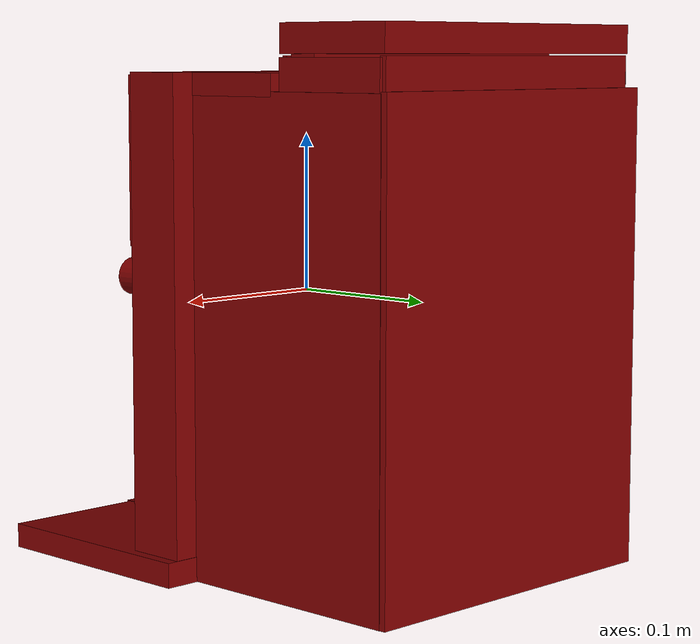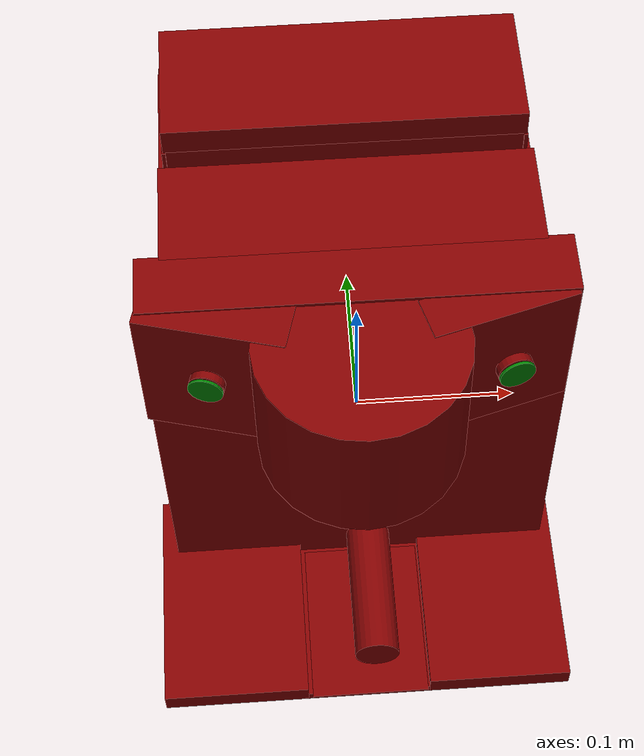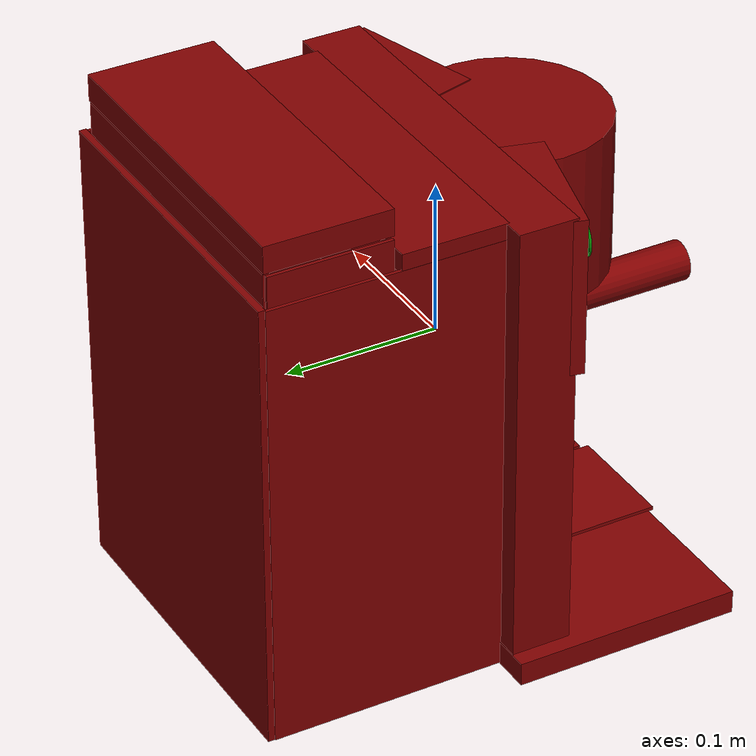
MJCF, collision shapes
<?xml version='1.0' encoding='UTF-8'?>
<mujoco model="model">
  <compiler angle="radian"/>
  <asset>
    <mesh file="visuals/Body001.obj" name="Body001_vis"/>
    <mesh file="visuals/Button001.obj" name="Button001_vis"/>
    <mesh file="visuals/Button002.obj" name="Button002_vis"/>
    <mesh file="visuals/Container001.obj" name="Container001_vis"/>
    <mesh file="visuals/Lever001.obj" name="Lever001_vis"/>
    <mesh file="visuals/Lid001.obj" name="Lid001_vis"/>
    <mesh file="visuals/Lid002.obj" name="Lid002_vis"/>
    <texture file="visuals/T_BC001.png" name="Body001_material" type="2d"/>
    <material name="Body001_material" rgba="1 1 1 1.0" texture="Body001_material" shininess="0.141421377658844" specular="0.3103448502657381"/>
    <texture file="visuals/T_BC001.png" name="Button001_material" type="2d"/>
    <material name="Button001_material" rgba="1 1 1 1.0" texture="Button001_material" shininess="0.141421377658844" specular="0.3103448502657381"/>
    <texture file="visuals/T_BC001.png" name="Button002_material" type="2d"/>
    <material name="Button002_material" rgba="1 1 1 1.0" texture="Button002_material" shininess="0.141421377658844" specular="0.3103448502657381"/>
    <texture file="visuals/T_BC001.png" name="Container001_material" type="2d"/>
    <material name="Container001_material" rgba="1 1 1 0.10236221551895142" texture="Container001_material" shininess="0.5" specular="0.3103448502657381"/>
    <texture file="visuals/T_BC001.png" name="Lid002_material" type="2d"/>
    <material name="Lid002_material" rgba="1 1 1 1.0" texture="Lid002_material" shininess="0.141421377658844" specular="0.3103448502657381"/>
    <texture file="visuals/T_BC001.png" name="Lever001_material" type="2d"/>
    <material name="Lever001_material" rgba="1 1 1 1.0" texture="Lever001_material" shininess="0.141421377658844" specular="0.3103448502657381"/>
    <texture file="visuals/T_BC001.png" name="Lid001_material" type="2d"/>
    <material name="Lid001_material" rgba="1 1 1 1.0" texture="Lid001_material" shininess="0.141421377658844" specular="0.3103448502657381"/>
  </asset>
  <default>
    <default class="visual">
      <geom conaffinity="0" contype="0" group="1" type="mesh"/>
    </default>
    <default class="collision">
      <geom group="0" rgba="0.5 0 0 0.5"/>
    </default>
    <default class="spawn">
      <geom group="0" rgba="1 1 1 0.5" contype="0" conaffinity="0"/>
      <site group="0" rgba="1 1 1 0.5"/>
    </default>
    <default class="region">
      <geom group="1" conaffinity="0" contype="0" rgba="0 1 0 0"/>
    </default>
  </default>
  <worldbody>
    <body>
      <body name="object">
        <geom class="collision" type="cylinder" pos="0.090449 -0.048671 0.097544" size="0.011137444525957108 0.0008226927020587027" quat="0.7017298340797424 0.7017298340797424 0.08703598380088806 0.08703596144914627" name="start_button_2" rgba="0.0 0.5 0 0.5"/>
        <geom class="collision" type="cylinder" pos="-0.090480 -0.047437 0.097704" size="0.010598023422062397 0.0007483839290216565" quat="0.7017298340797424 0.7017298340797424 -0.08703597635030746 -0.08703596144914627" name="start_button_1" rgba="0.0 0.5 0 0.5"/>
        <site type="cylinder" rgba="0.8 0.5 0.25 1" size="0.0018364122370257974 0.06123407557606697" pos="0.000350 -0.047698 -0.095516" name="coffee_liquid"/>
        <site rgba="0 0 0 0" size="0.009999999776482582 0.009999999776482582" pos="0.000403 -0.047850 -0.142950" name="receptacle_place_site"/>
        <geom mesh="Body001_vis" type="mesh" solimp="0.998 0.998 0.001" solref="0.001 1" density="100" friction="0.95 0.3 0.1" class="visual" material="Body001_material"/>
        <geom class="collision" type="box" pos="-0.000032 0.173026 -0.018967" size="0.11273114383220673 0.0022655546199530363 0.14878633618354797" quat="1.0 0.0 0.0 0.0"/>
        <geom class="collision" type="box" pos="0.111902 0.094330 -0.019421" size="0.0011445436393842101 0.07677944749593735 0.1483321487903595" quat="1.0 0.0 0.0 0.0"/>
        <geom class="collision" type="box" pos="-0.112162 0.094330 -0.019421" size="0.0011445436393842101 0.07677944749593735 0.1483321487903595" quat="1.0 0.0 0.0 0.0"/>
        <geom class="collision" type="box" pos="0.000450 -0.000590 -0.014114" size="0.12807708978652954 0.019435109570622444 0.15363937616348267" quat="1.0 0.0 0.0 0.0"/>
        <geom class="collision" type="box" pos="0.000093 0.051148 0.132698" size="0.11322750896215439 0.0343429334461689 0.006827814970165491" quat="1.0 0.0 0.0 0.0"/>
        <geom class="collision" type="box" pos="-0.090140 -0.055218 -0.160338" size="0.04828904569149017 0.07455458492040634 0.007659596856683493" quat="1.0 0.0 0.0 0.0"/>
        <geom class="collision" type="box" pos="0.088155 -0.055218 -0.160338" size="0.047481801360845566 0.07455458492040634 0.007659596856683493" quat="1.0 0.0 0.0 0.0"/>
        <geom class="collision" type="box" pos="0.002571 -0.055218 -0.164359" size="0.047481801360845566 0.07455458492040634 0.003638563212007284" quat="1.0 0.0 0.0 0.0"/>
        <geom class="collision" type="cylinder" pos="-0.000128 -0.048285 0.086629" size="0.06338147819042206 0.05059664323925972" quat="1.0 0.0 0.0 0.0"/>
        <geom class="collision" type="cylinder" pos="-0.000128 -0.048285 0.024610" size="0.040189795196056366 0.016592320054769516" quat="1.0 0.0 0.0 0.0"/>
        <geom class="collision" type="box" pos="-0.082400 -0.020926 0.086467" size="0.04496154934167862 0.015863317996263504 0.05156942084431648" quat="0.9917343854904175 0.0 -0.0 -0.12830807268619537"/>
        <geom class="collision" type="box" pos="0.080596 -0.021905 0.086467" size="0.04496154934167862 0.013447819277644157 0.05156942084431648" quat="0.99053955078125 0.0 0.0 0.1372273564338684"/>
        <geom class="collision" type="box" pos="-0.000136 0.097057 -0.166278" size="0.1108209490776062 0.07455458492040634 0.0017192101804539561" quat="1.0 0.0 0.0 0.0"/>
        <body name="Button001">
          <joint axis="0.253505140542984 0.9673340320587158 0.0" pos="-0.089172 -0.042879 0.097302" limited="true" name="Button001_joint" range="0.0 0.003" type="slide" damping="1" frictionloss="1" armature=".01" stiffness="0.05"/>
          <geom mesh="Button001_vis" type="mesh" solimp="0.998 0.998 0.001" solref="0.001 1" density="100" friction="0.95 0.3 0.1" class="visual" material="Button001_material"/>
          <geom class="collision" type="cylinder" pos="-0.089460 -0.043386 0.097899" size="0.010598023422062397 0.0024867102038115263" quat="0.7017298340797424 0.7017298340797424 -0.08703597635030746 -0.08703596144914627"/>
        </body>
        <body name="Button002">
          <joint axis="-0.2837986648082733 0.9588838815689087 0.0" pos="0.089199 -0.042798 0.097302" limited="true" name="Button002_joint" range="0.0 0.003" type="slide" damping="1" frictionloss="1" armature=".01" stiffness="0.05"/>
          <geom mesh="Button002_vis" type="mesh" solimp="0.998 0.998 0.001" solref="0.001 1" density="100" friction="0.95 0.3 0.1" class="visual" material="Button002_material"/>
          <geom class="collision" type="cylinder" pos="0.089354 -0.044323 0.097544" size="0.011137444525957108 0.00261327950283885" quat="0.7017298340797424 0.7017298340797424 0.08703598380088806 0.08703596144914627"/>
        </body>
        <body name="Container001">
          <joint axis="0.0 0.0 1.0" pos="-0.000156 0.127895 -0.005753" limited="true" name="Container001_joint" range="0.0 0.08" type="slide" damping="1" frictionloss="1" armature=".01" stiffness="0.05"/>
          <geom mesh="Container001_vis" type="mesh" solimp="0.998 0.998 0.001" solref="0.001 1" density="100" friction="0.95 0.3 0.1" class="visual" material="Container001_material"/>
          <geom class="collision" type="box" pos="-0.108745 0.128394 -0.006294" size="0.0011445436393842101 0.03984048590064049 0.15463219583034515" quat="1.0 0.0 0.0 0.0"/>
          <geom class="collision" type="box" pos="0.108436 0.127816 -0.006294" size="0.0011445436393842101 0.039262186735868454 0.15463219583034515" quat="1.0 0.0 0.0 0.0"/>
          <geom class="collision" type="box" pos="-0.000004 0.167459 -0.005840" size="0.10761674493551254 0.0022655546199530363 0.15508638322353363" quat="1.0 0.0 0.0 0.0"/>
          <geom class="collision" type="box" pos="-0.000004 0.091286 -0.005840" size="0.10761674493551254 0.001458917511627078 0.15508638322353363" quat="1.0 0.0 0.0 0.0"/>
          <geom class="collision" type="box" pos="-0.000004 0.128790 -0.158367" size="0.10761674493551254 0.036772847175598145 0.002559768734499812" quat="1.0 0.0 0.0 0.0"/>
          <body name="Lid002">
            <joint axis="0.0 0.0 1.0" pos="0.003246 0.127898 0.144810" limited="true" name="Lid002_joint" range="0.0 0.08" type="slide" damping="1" frictionloss="1" armature=".01" stiffness="0.05"/>
            <geom mesh="Lid002_vis" type="mesh" solimp="0.998 0.998 0.001" solref="0.001 1" density="100" friction="0.95 0.3 0.1" class="visual" material="Lid002_material"/>
            <geom class="collision" type="box" pos="-0.000169 0.128938 0.159038" size="0.10886985808610916 0.040910542011260986 0.008760830387473106" quat="1.0 0.0 0.0 0.0"/>
            <geom class="collision" type="box" pos="0.000564 0.103579 0.136451" size="0.10489492863416672 0.009201103821396828 0.015179985202848911" quat="1.0 0.0 0.0 0.0"/>
          </body>
        </body>
        <body name="Lever001">
          <joint axis="0.0 0.0 1.0" pos="-0.000010 -0.047568 0.011542" limited="true" name="Lever001_joint" range="-0.7853981633974483 0.7853981633974483" type="hinge" damping="1" frictionloss="1" armature=".01" stiffness="1"/>
          <geom mesh="Lever001_vis" type="mesh" solimp="0.998 0.998 0.001" solref="0.001 1" density="100" friction="0.95 0.3 0.1" class="visual" material="Lever001_material"/>
          <geom class="collision" type="cylinder" pos="-0.000128 -0.048285 -0.006583" size="0.028990430757403374 0.013290840201079845" quat="1.0 0.0 0.0 0.0"/>
          <geom class="collision" type="cylinder" pos="-0.000128 -0.048285 -0.023946" size="0.00896037369966507 0.004774580243974924" quat="1.0 0.0 0.0 0.0"/>
          <geom class="collision" type="cylinder" pos="-0.000007 -0.047706 -0.031534" size="0.0068381293676793575 0.0032926544081419706" quat="1.0 0.0 0.0 0.0"/>
          <geom class="collision" type="cylinder" pos="0.000090 -0.132821 -0.004063" size="0.012957622297108173 0.04042704030871391" quat="0.7071067094802856 0.7071068286895752 0.0 0.0"/>
        </body>
        <body name="Lid001">
          <joint axis="0.0 0.0 1.0" pos="-0.000000 -0.085820 -0.155279" limited="true" name="Lid001_joint" range="0.0 0.06" type="slide" damping="1" frictionloss="1" armature=".01" stiffness="0.05"/>
          <geom mesh="Lid001_vis" type="mesh" solimp="0.998 0.998 0.001" solref="0.001 1" density="100" friction="0.95 0.3 0.1" class="visual" material="Lid001_material"/>
          <geom class="collision" type="box" pos="-0.000063 -0.080667 -0.154260" size="0.03887118771672249 0.054317377507686615 0.0012330027529969811" quat="1.0 0.0 0.0 0.0"/>
        </body>
        <geom class="region" name="reg_main" type="box" pos="0.0 0.013778499999999999 0.0" size="0.13795 0.1590935 0.167696"/>
      </body>
    </body>
  </worldbody>
  <actuator>
    <motor name="Button001_joint_actuator" joint="Button001_joint" gear="0.1"/>
    <motor name="Button002_joint_actuator" joint="Button002_joint" gear="0.1"/>
    <motor name="Container001_joint_actuator" joint="Container001_joint" gear="50"/>
    <motor name="Lever001_joint_actuator" joint="Lever001_joint" gear="50"/>
    <motor name="Lid001_joint_actuator" joint="Lid001_joint" gear="2"/>
    <motor name="Lid002_joint_actuator" joint="Lid002_joint" gear="10"/>
  </actuator>
</mujoco>
